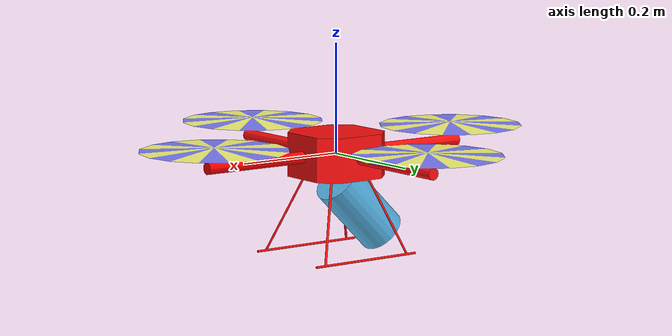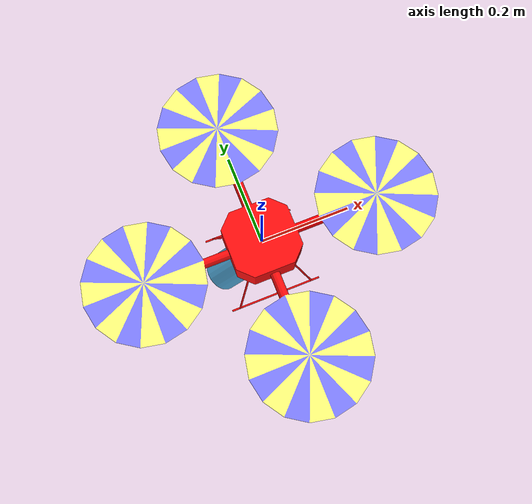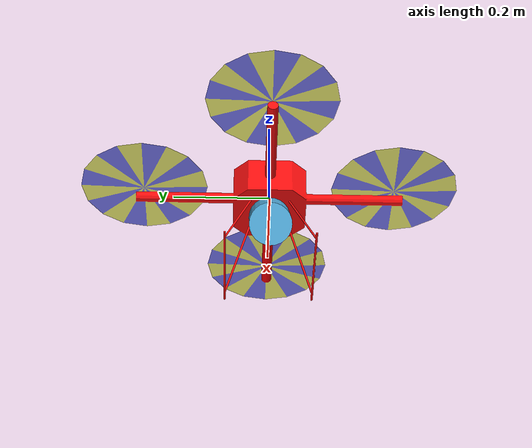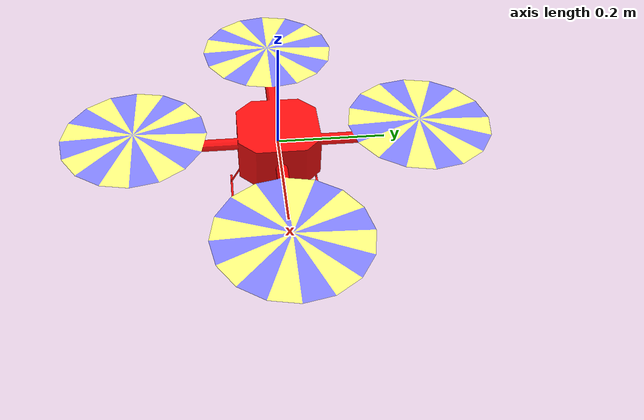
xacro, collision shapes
<?xml version="1.0"?>

<robot name="quadrotor" xmlns:xacro="http://www.ros.org/wiki/xacro">

    <xacro:property name="M_PI" value="3.1415926535897931" />

    <!-- Included URDF Files -->
    <xacro:include filename="$(find hector_quadrotor_description)/urdf/quadrotor_base.urdf.xacro" />

    <!-- Instantiate quadrotor_base_macro once (has no parameters atm) -->
    <xacro:quadrotor_base_macro />

    <xacro:include filename="$(find hector_quadrotor_description)/urdf/HDL-32E.urdf.xacro"/>
    <xacro:HDL-32E parent="base_link" name="velodyne" topic="velodyne_points" hz="10" samples="440" gpu="true">
      <origin xyz="0.0 0.0 -0.05" rpy="${M_PI} 0.785398163 0"/>
    </xacro:HDL-32E>

    <!-- Forward facing camera -->
    <xacro:include filename="$(find hector_sensors_description)/urdf/generic_camera.urdf.xacro" />
    <xacro:generic_camera name="front_cam" parent="base_link" ros_topic="camera/image" cam_info_topic="camera/camera_info" update_rate="10" res_x="320" res_y="240" image_format="R8G8B8" hfov="90">
      <origin xyz="0.05 0.0 -0.06" rpy="0 0 0"/>
    </xacro:generic_camera>

</robot>

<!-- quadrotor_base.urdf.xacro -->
<robot xmlns:xacro="http://www.ros.org/wiki/xacro">

  <xacro:property name="pi" value="3.1415926535897931" />

  <!-- Main quadrotor link -->
  <xacro:macro name="quadrotor_base_macro">
    <link name="base_link">
      <inertial>
        <mass value="1.477" />
        <origin xyz="0 0 0" />
        <inertia ixx="0.01152" ixy="0.0" ixz="0.0" iyy="0.01152" iyz="0.0" izz="0.0218" />
      </inertial>

      <visual>
        <origin xyz="0 0 0" rpy="0 0 0" />
        <geometry>
          <mesh filename="package://hector_quadrotor_description/meshes/quadrotor/quadrotor_base.dae"/>
        </geometry>
      </visual>

      <collision>
        <origin xyz="0 0 0" rpy="0 0 0" />
        <geometry>
          <mesh filename="package://hector_quadrotor_description/meshes/quadrotor/quadrotor_base.stl"/>
        </geometry>
      </collision>
    </link>

    <!-- Sonar height sensor -->

  </xacro:macro>
</robot>

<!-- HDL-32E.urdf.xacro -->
<robot xmlns:xacro="http://www.ros.org/wiki/xacro" name="HDL-32E">
  <xacro:property name="M_PI" value="3.1415926535897931" />
  <xacro:macro name="HDL-32E" params="*origin parent:=base_link name:=velodyne topic:=/velodyne_points organize_cloud:=false hz:=10 lasers:=32 samples:=2187 collision_range:=0.3 min_range:=0.9 max_range:=130.0 noise:=0.008 min_angle:=-${M_PI} max_angle:=${M_PI} gpu:=false">

    <joint name="${name}_base_mount_joint" type="fixed">
      <xacro:insert_block name="origin" />
      <parent link="${parent}"/>
      <child link="${name}_base_link"/>
    </joint>

    <link name="${name}_base_link">
      <inertial>
        <mass value="0.00000001"/>
        <origin xyz="0 0 0.07212"/>
        <inertia ixx="${(1.0 * (3.0*0.04267*0.04267 + 0.14424*0.14424)) / 12.0}" ixy="0" ixz="0"
          iyy="${(1.0 * (3.0*0.04267*0.04267 + 0.14424*0.14424)) / 12.0}" iyz="0"
          izz="${0.5 * 1.0 * (0.04267*0.04267)}"/>
      </inertial>
      <visual>
        <geometry>
          <mesh filename="package://velodyne_description/meshes/HDL32E_base.dae" />
        </geometry>
      </visual>
      <collision>
        <origin rpy="0 0 0" xyz="0 0 0.07212"/>
        <geometry>
          <cylinder radius="0.04267" length="0.14424"/>
        </geometry>
      </collision>
    </link>

    <joint name="${name}_base_scan_joint" type="fixed" >
      <origin xyz="0 0 0.09081" rpy="0 0 0" />
      <parent link="${name}_base_link" />
      <child link="${name}"/>
    </joint>

    <link name="${name}">
      <inertial>
        <mass value="0.01"/>
        <origin xyz="0 0 0"/>
        <inertia ixx="1e-7" ixy="0" ixz="0" iyy="1e-7" iyz="0" izz="1e-7"/>
      </inertial>
      <visual>
        <origin xyz="0 0 -0.09081" rpy="0 0 0" />
        <geometry>
          <mesh filename="package://velodyne_description/meshes/HDL32E_scan.dae" />
        </geometry>
      </visual>
      <collision>
        <geometry>
          <sphere radius="0"/>
        </geometry>
      </collision>
    </link>

    <!-- Gazebo requires the velodyne_gazebo_plugins package -->
    <gazebo reference="${name}">
      <xacro:if value="${gpu}">
        <sensor type="gpu_ray" name="${name}-HDL32E">
          <pose>0 0 0 0 0 0</pose>
          <visualize>false</visualize>
          <update_rate>${hz}</update_rate>
          <ray>
            <scan>
              <horizontal>
                <samples>${samples}</samples>
                <resolution>1</resolution>
                <min_angle>${min_angle}</min_angle>
                <max_angle>${max_angle}</max_angle>
              </horizontal>
              <vertical>
                <samples>${lasers}</samples>
                <resolution>1</resolution>
                <min_angle>-${30.67*M_PI/180.0}</min_angle>
                <max_angle> ${10.67*M_PI/180.0}</max_angle>
              </vertical>
            </scan>
            <range>
              <min>${collision_range}</min>
              <max>${max_range+1}</max>
              <resolution>0.001</resolution>
            </range>
            <noise>
              <type>gaussian</type>
              <mean>0.0</mean>
              <stddev>0.0</stddev>
            </noise>
          </ray>
          <plugin name="gazebo_ros_laser_controller" filename="libgazebo_ros_velodyne_gpu_laser.so">
            <topicName>${topic}</topicName>
            <frameName>${name}</frameName>
            <organize_cloud>${organize_cloud}</organize_cloud>
            <min_range>${min_range}</min_range>
            <max_range>${max_range}</max_range>
            <gaussianNoise>${noise}</gaussianNoise>
          </plugin>
        </sensor>
      </xacro:if>
      <xacro:unless value="${gpu}">
        <sensor type="ray" name="${name}-HDL32E">
          <pose>0 0 0 0 0 0</pose>
          <visualize>false</visualize>
          <update_rate>${hz}</update_rate>
          <ray>
            <scan>
              <horizontal>
                <samples>${samples}</samples>
                <resolution>1</resolution>
                <min_angle>${min_angle}</min_angle>
                <max_angle>${max_angle}</max_angle>
              </horizontal>
              <vertical>
                <samples>${lasers}</samples>
                <resolution>1</resolution>
                <min_angle>-${30.67*M_PI/180.0}</min_angle>
                <max_angle> ${10.67*M_PI/180.0}</max_angle>
              </vertical>
            </scan>
            <range>
              <min>${collision_range}</min>
              <max>${max_range+1}</max>
              <resolution>0.001</resolution>
            </range>
            <noise>
              <type>gaussian</type>
              <mean>0.0</mean>
              <stddev>0.0</stddev>
            </noise>
          </ray>
          <plugin name="gazebo_ros_laser_controller" filename="libgazebo_ros_velodyne_laser.so">
            <topicName>${topic}</topicName>
            <frameName>${name}</frameName>
            <organize_cloud>${organize_cloud}</organize_cloud>
            <min_range>${min_range}</min_range>
            <max_range>${max_range}</max_range>
            <gaussianNoise>${noise}</gaussianNoise>
          </plugin>
        </sensor>
      </xacro:unless>
    </gazebo>

  </xacro:macro>
</robot>

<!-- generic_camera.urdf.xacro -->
<robot xmlns:xacro="http://www.ros.org/wiki/xacro">
  <xacro:arg name="simulator" default="gazebo"/>
  <xacro:property name="M_PI" value="3.1415926535897931" />

  <xacro:macro name="generic_camera" params="name parent *origin ros_topic cam_info_topic update_rate res_x res_y image_format hfov">
    <joint name="${name}_joint" type="fixed">
      <xacro:insert_block name="origin" />
      <parent link="${parent}"/>
      <child link="${name}_link"/>
    </joint>

    <link name="${name}_link">
    </link>

    <joint name="${name}_optical_joint" type="fixed">
      <origin xyz="0 0 0" rpy="${-M_PI/2} 0.0 ${-M_PI/2}" />
      <parent link="${name}_link" />
      <child link="${name}_optical_frame"/>
    </joint>

    <link name="${name}_optical_frame"/>
    <gazebo reference="${name}_link">
      <sensor type="camera" name="${name}_camera_sensor">
        <update_rate>${update_rate}</update_rate>
        <camera>
          <horizontal_fov>${hfov * M_PI/180.0}</horizontal_fov>
          <image>
            <format>${image_format}</format>
            <width>${res_x}</width>
            <height>${res_y}</height>
          </image>
          <clip>
            <near>0.01</near>
            <far>100</far>
          </clip>
        </camera>

        <xacro:if value="${'$(arg simulator)' == 'gazebo'}">
          <plugin name="${name}_camera_controller" filename="libgazebo_ros_camera.so">
            <cameraName>${name}</cameraName>
            <imageTopicName>${ros_topic}</imageTopicName>
            <cameraInfoTopicName>${cam_info_topic}</cameraInfoTopicName>
            <frameName>${name}_optical_frame</frameName>
          </plugin>
        </xacro:if>
      </sensor>
    </gazebo>
  </xacro:macro>

</robot>
